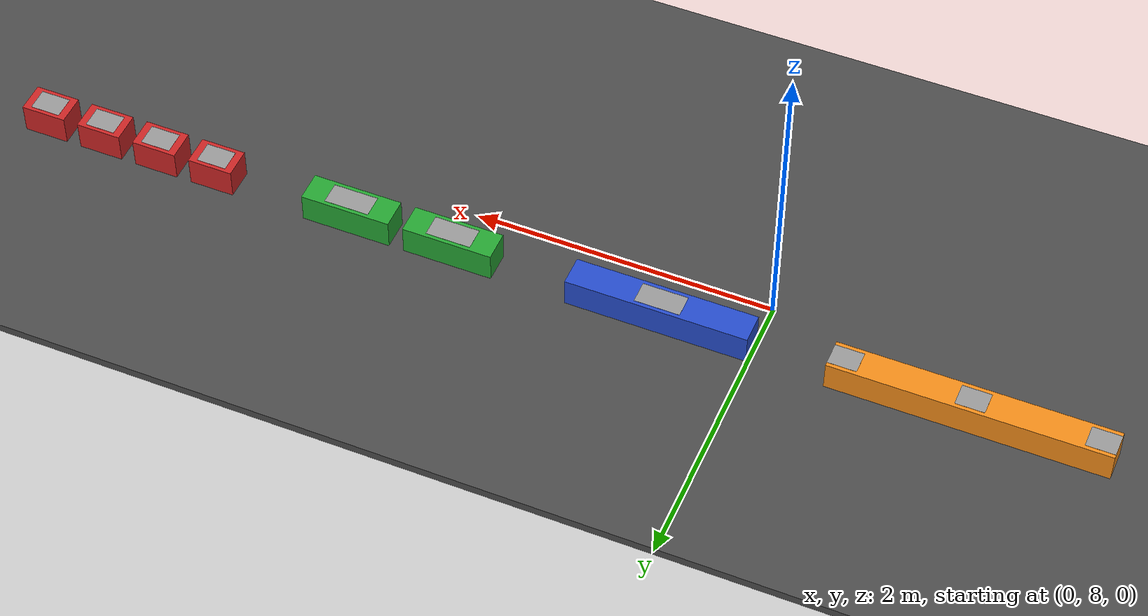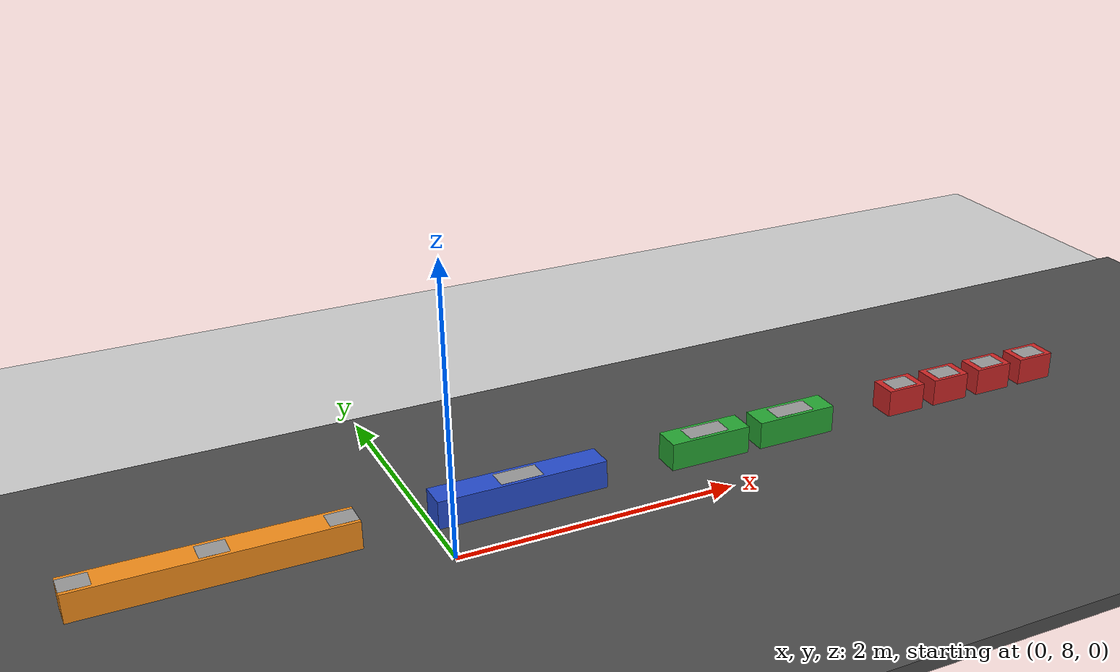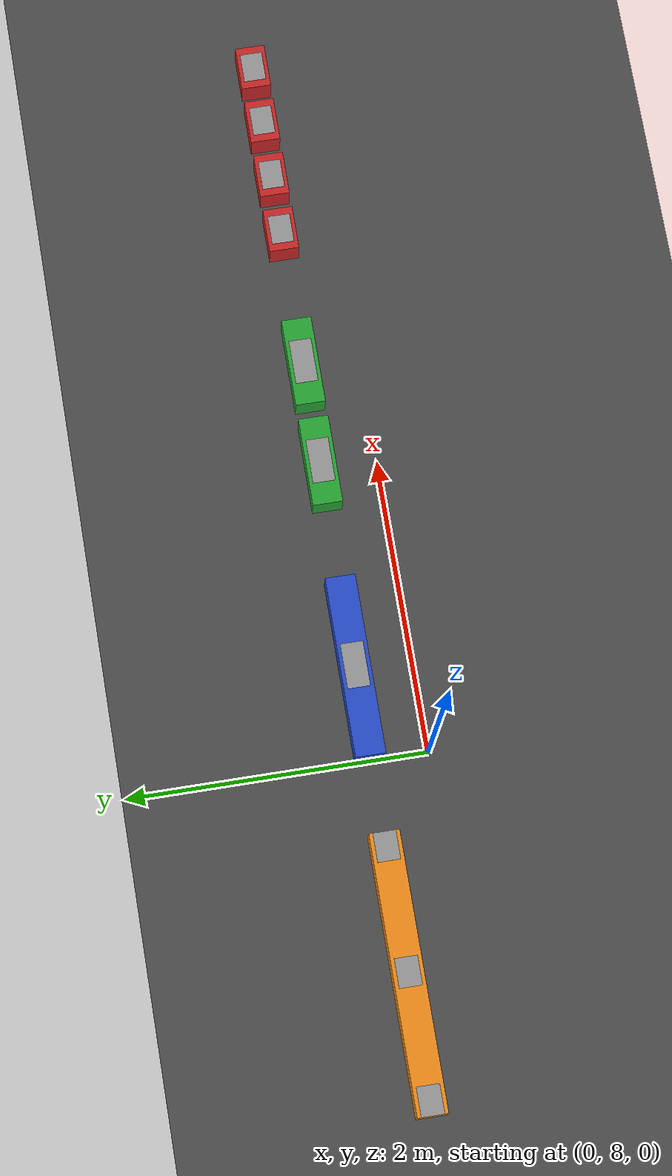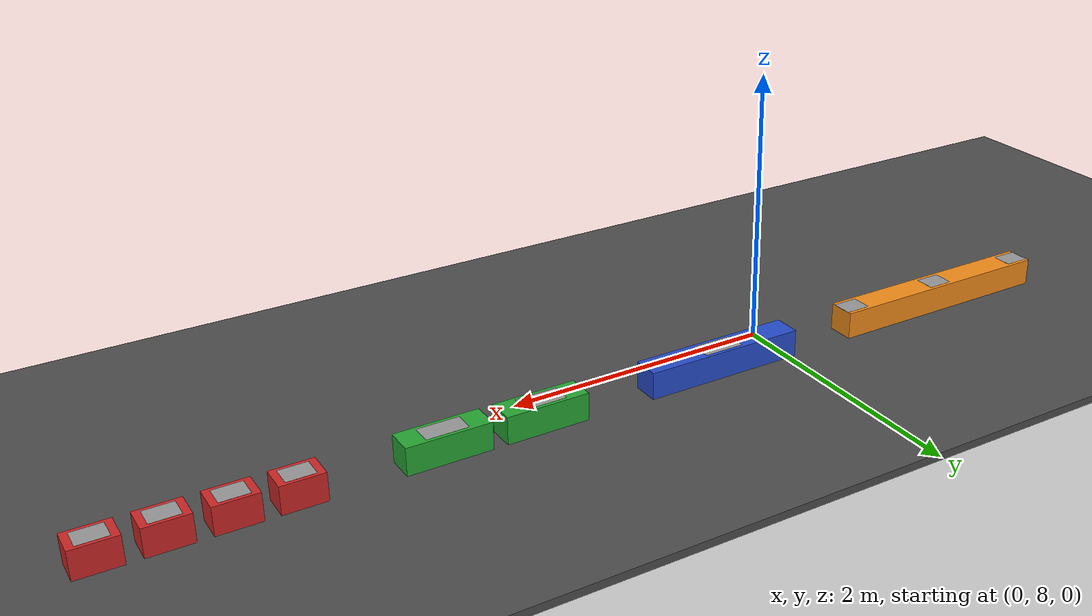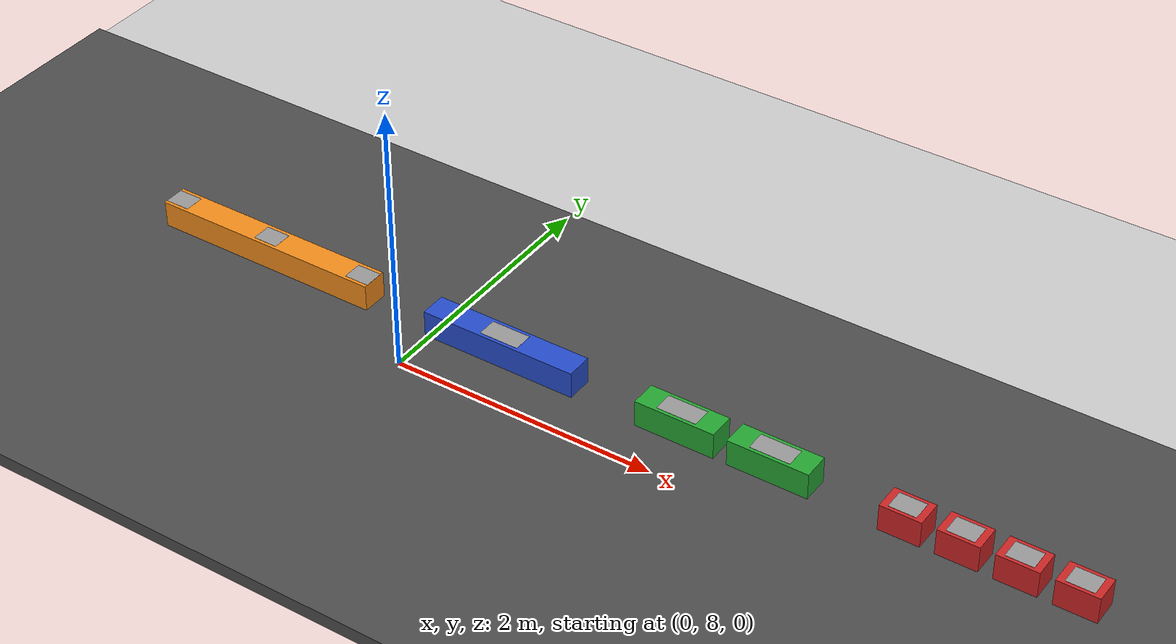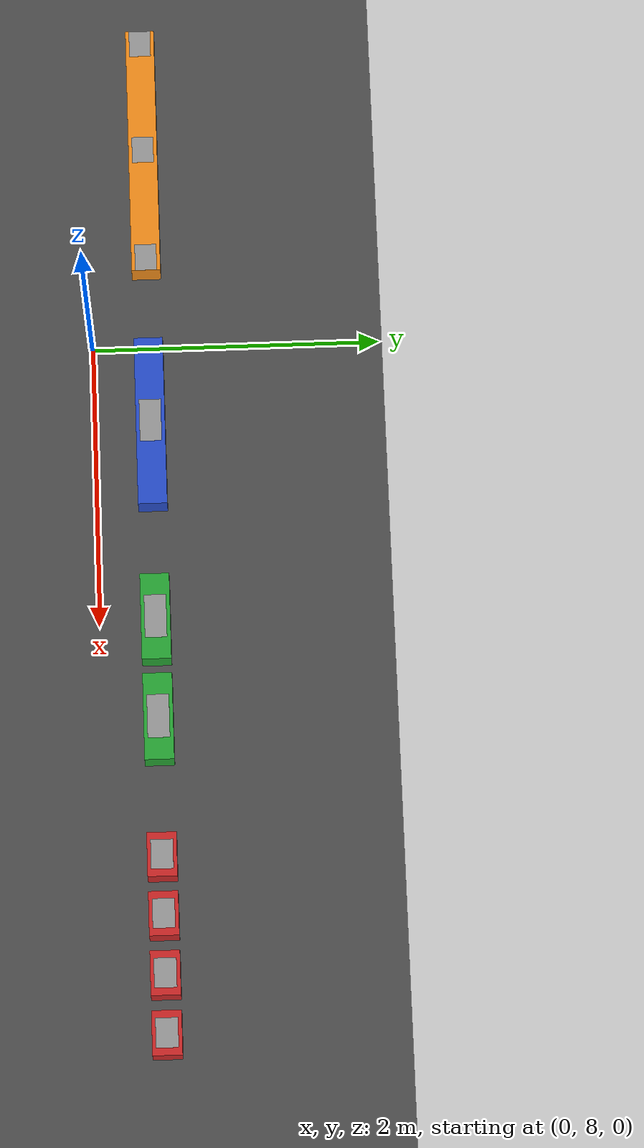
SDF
<sdf version="1.6">
 <world name="default">
  <model name="ground_plane">
   <static>1</static>
   <link name="link">
    <collision name="collision">
     <geometry><plane><normal>0 0 1</normal><size>100 100</size></plane></geometry>
     <surface>
      <contact><collide_bitmask>65535</collide_bitmask></contact>
      <friction><ode><mu>100</mu><mu2>50</mu2></ode></friction>
     </surface>
    </collision>
    <visual name="visual">
     <cast_shadows>0</cast_shadows>
     <geometry><plane><normal>0 0 1</normal><size>100 100</size></plane></geometry>
     <material>
      <script><uri>file://media/materials/scripts/gazebo.material</uri><name>Gazebo/Grey</name></script>
     </material>
    </visual>
   </link>
  </model>
  <model name="brick_red_3">
   <link name="base_link">
    <inertial>
     <mass>0.01</mass>
     <inertia><ixx>0.001</ixx><ixy>0</ixy><ixz>0</ixz><iyy>0.01</iyy><iyz>0</iyz><izz>0.01</izz></inertia>
    </inertial>
    <collision name="base_link_collision"><geometry><box><size>0.3 0.2 0.2</size></box></geometry></collision>
    <collision name="base_link_fixed_joint_lump__magnet_patch_collision_1">
     <pose>0 0 0.1 0 -0 0</pose>
     <geometry><box><size>0.1 0.025 0.0005</size></box></geometry>
    </collision>
    <visual name="base_link_visual">
     <geometry><box><size>0.3 0.2 0.2</size></box></geometry>
     <material>
      <script><name>Gazebo/Red</name><uri>file://media/materials/scripts/gazebo.material</uri></script>
     </material>
    </visual>
    <visual name="base_link_fixed_joint_lump__magnet_patch_visual_1">
     <pose>0 0 0.1 0 -0 0</pose>
     <geometry><box><size>0.2 0.15 0.001</size></box></geometry>
     <material>
      <script><name>Gazebo/Gray</name><uri>file://media/materials/scripts/gazebo.material</uri></script>
     </material>
    </visual>
   </link>
   <static>0</static>
   <plugin name="dipole_magnet" filename="libstorm_gazebo_dipole_magnet.so">
    <dipole_moment>0 0 1</dipole_moment>
    <shouldPublish>1</shouldPublish>
    <topicNs>magnet</topicNs>
    <updateRate>100</updateRate>
    <gain>1.0</gain>
    <bodyName>base_link</bodyName>
    <xyzOffset>0 0 -0.1</xyzOffset>
    <rpyOffset>0 -0 0</rpyOffset>
   </plugin>
   <pose>4.85115 8.38756 0.15 -0 -0 -0.000284</pose>
  </model>
  <model name="brick_red_4">
   <link name="base_link">
    <inertial>
     <mass>0.01</mass>
     <inertia><ixx>0.001</ixx><ixy>0</ixy><ixz>0</ixz><iyy>0.01</iyy><iyz>0</iyz><izz>0.01</izz></inertia>
    </inertial>
    <collision name="base_link_collision"><geometry><box><size>0.3 0.2 0.2</size></box></geometry></collision>
    <collision name="base_link_fixed_joint_lump__magnet_patch_collision_1">
     <pose>0 0 0.1 0 -0 0</pose>
     <geometry><box><size>0.1 0.025 0.0005</size></box></geometry>
    </collision>
    <visual name="base_link_visual">
     <geometry><box><size>0.3 0.2 0.2</size></box></geometry>
     <material>
      <script><name>Gazebo/Red</name><uri>file://media/materials/scripts/gazebo.material</uri></script>
     </material>
    </visual>
    <visual name="base_link_fixed_joint_lump__magnet_patch_visual_1">
     <pose>0 0 0.1 0 -0 0</pose>
     <geometry><box><size>0.2 0.15 0.001</size></box></geometry>
     <material>
      <script><name>Gazebo/Gray</name><uri>file://media/materials/scripts/gazebo.material</uri></script>
     </material>
    </visual>
   </link>
   <static>0</static>
   <plugin name="dipole_magnet" filename="libstorm_gazebo_dipole_magnet.so">
    <dipole_moment>0 0 1</dipole_moment>
    <shouldPublish>1</shouldPublish>
    <topicNs>magnet</topicNs>
    <updateRate>100</updateRate>
    <gain>1.0</gain>
    <bodyName>base_link</bodyName>
    <xyzOffset>0 0 -0.1</xyzOffset>
    <rpyOffset>0 -0 0</rpyOffset>
   </plugin>
   <pose>4.45114 8.38763 0.15 -0 -0 -0.000264</pose>
  </model>
  <model name="brick_red_5">
   <link name="base_link">
    <inertial>
     <mass>0.01</mass>
     <inertia><ixx>0.001</ixx><ixy>0</ixy><ixz>0</ixz><iyy>0.01</iyy><iyz>0</iyz><izz>0.01</izz></inertia>
    </inertial>
    <collision name="base_link_collision"><geometry><box><size>0.3 0.2 0.2</size></box></geometry></collision>
    <collision name="base_link_fixed_joint_lump__magnet_patch_collision_1">
     <pose>0 0 0.1 0 -0 0</pose>
     <geometry><box><size>0.1 0.025 0.0005</size></box></geometry>
    </collision>
    <visual name="base_link_visual">
     <geometry><box><size>0.3 0.2 0.2</size></box></geometry>
     <material>
      <script><name>Gazebo/Red</name><uri>file://media/materials/scripts/gazebo.material</uri></script>
     </material>
    </visual>
    <visual name="base_link_fixed_joint_lump__magnet_patch_visual_1">
     <pose>0 0 0.1 0 -0 0</pose>
     <geometry><box><size>0.2 0.15 0.001</size></box></geometry>
     <material>
      <script><name>Gazebo/Gray</name><uri>file://media/materials/scripts/gazebo.material</uri></script>
     </material>
    </visual>
   </link>
   <static>0</static>
   <plugin name="dipole_magnet" filename="libstorm_gazebo_dipole_magnet.so">
    <dipole_moment>0 0 1</dipole_moment>
    <shouldPublish>1</shouldPublish>
    <topicNs>magnet</topicNs>
    <updateRate>100</updateRate>
    <gain>1.0</gain>
    <bodyName>base_link</bodyName>
    <xyzOffset>0 0 -0.1</xyzOffset>
    <rpyOffset>0 -0 0</rpyOffset>
   </plugin>
   <pose>4.05071 8.38771 0.15 -0 -0 -0.000236</pose>
  </model>
  <model name="brick_red_6">
   <link name="base_link">
    <inertial>
     <mass>0.01</mass>
     <inertia><ixx>0.001</ixx><ixy>0</ixy><ixz>0</ixz><iyy>0.01</iyy><iyz>0</iyz><izz>0.01</izz></inertia>
    </inertial>
    <collision name="base_link_collision"><geometry><box><size>0.3 0.2 0.2</size></box></geometry></collision>
    <collision name="base_link_fixed_joint_lump__magnet_patch_collision_1">
     <pose>0 0 0.1 0 -0 0</pose>
     <geometry><box><size>0.1 0.025 0.0005</size></box></geometry>
    </collision>
    <visual name="base_link_visual">
     <geometry><box><size>0.3 0.2 0.2</size></box></geometry>
     <material>
      <script><name>Gazebo/Red</name><uri>file://media/materials/scripts/gazebo.material</uri></script>
     </material>
    </visual>
    <visual name="base_link_fixed_joint_lump__magnet_patch_visual_1">
     <pose>0 0 0.1 0 -0 0</pose>
     <geometry><box><size>0.2 0.15 0.001</size></box></geometry>
     <material>
      <script><name>Gazebo/Gray</name><uri>file://media/materials/scripts/gazebo.material</uri></script>
     </material>
    </visual>
   </link>
   <static>0</static>
   <plugin name="dipole_magnet" filename="libstorm_gazebo_dipole_magnet.so">
    <dipole_moment>0 0 1</dipole_moment>
    <shouldPublish>1</shouldPublish>
    <topicNs>magnet</topicNs>
    <updateRate>100</updateRate>
    <gain>1.0</gain>
    <bodyName>base_link</bodyName>
    <xyzOffset>0 0 -0.1</xyzOffset>
    <rpyOffset>0 -0 0</rpyOffset>
   </plugin>
   <pose>3.65 8.38738 0.15 -0 -0 -0.000217</pose>
  </model>
  <model name="brick_green_1">
   <link name="base_link">
    <inertial>
     <mass>0.01</mass>
     <inertia><ixx>0.001</ixx><ixy>0</ixy><ixz>0</ixz><iyy>0.01</iyy><iyz>0</iyz><izz>0.01</izz></inertia>
    </inertial>
    <collision name="base_link_collision"><geometry><box><size>0.6 0.2 0.2</size></box></geometry></collision>
    <collision name="base_link_fixed_joint_lump__magnet_patch_collision_1">
     <pose>0 0 0.1 0 -0 0</pose>
     <geometry><box><size>0.1 0.025 0.0005</size></box></geometry>
    </collision>
    <visual name="base_link_visual">
     <geometry><box><size>0.6 0.2 0.2</size></box></geometry>
     <material>
      <script><name>Gazebo/Green</name><uri>file://media/materials/scripts/gazebo.material</uri></script>
     </material>
    </visual>
    <visual name="base_link_fixed_joint_lump__magnet_patch_visual_1">
     <pose>0 0 0.1 0 -0 0</pose>
     <geometry><box><size>0.3 0.15 0.001</size></box></geometry>
     <material>
      <script><name>Gazebo/Gray</name><uri>file://media/materials/scripts/gazebo.material</uri></script>
     </material>
    </visual>
   </link>
   <static>0</static>
   <plugin name="dipole_magnet" filename="libstorm_gazebo_dipole_magnet.so">
    <dipole_moment>0 0 1</dipole_moment>
    <shouldPublish>1</shouldPublish>
    <topicNs>magnet</topicNs>
    <updateRate>100</updateRate>
    <gain>1.0</gain>
    <bodyName>base_link</bodyName>
    <xyzOffset>0 0 -0.1</xyzOffset>
    <rpyOffset>0 -0 0</rpyOffset>
   </plugin>
   <pose>1.99999 8.38796 0.15 -5e-06 -0 -1.1e-05</pose>
  </model>
  <model name="brick_green_2">
   <link name="base_link">
    <inertial>
     <mass>0.01</mass>
     <inertia><ixx>0.001</ixx><ixy>0</ixy><ixz>0</ixz><iyy>0.01</iyy><iyz>0</iyz><izz>0.01</izz></inertia>
    </inertial>
    <collision name="base_link_collision"><geometry><box><size>0.6 0.2 0.2</size></box></geometry></collision>
    <collision name="base_link_fixed_joint_lump__magnet_patch_collision_1">
     <pose>0 0 0.1 0 -0 0</pose>
     <geometry><box><size>0.1 0.025 0.0005</size></box></geometry>
    </collision>
    <visual name="base_link_visual">
     <geometry><box><size>0.6 0.2 0.2</size></box></geometry>
     <material>
      <script><name>Gazebo/Green</name><uri>file://media/materials/scripts/gazebo.material</uri></script>
     </material>
    </visual>
    <visual name="base_link_fixed_joint_lump__magnet_patch_visual_1">
     <pose>0 0 0.1 0 -0 0</pose>
     <geometry><box><size>0.3 0.15 0.001</size></box></geometry>
     <material>
      <script><name>Gazebo/Gray</name><uri>file://media/materials/scripts/gazebo.material</uri></script>
     </material>
    </visual>
   </link>
   <static>0</static>
   <plugin name="dipole_magnet" filename="libstorm_gazebo_dipole_magnet.so">
    <dipole_moment>0 0 1</dipole_moment>
    <shouldPublish>1</shouldPublish>
    <topicNs>magnet</topicNs>
    <updateRate>100</updateRate>
    <gain>1.0</gain>
    <bodyName>base_link</bodyName>
    <xyzOffset>0 0 -0.1</xyzOffset>
    <rpyOffset>0 -0 0</rpyOffset>
   </plugin>
   <pose>2.69941 8.38819 0.15 -4e-06 -0 2e-05</pose>
  </model>
  <model name="brick_blue">
   <link name="base_link">
    <inertial>
     <mass>0.01</mass>
     <inertia><ixx>0.001</ixx><ixy>0</ixy><ixz>0</ixz><iyy>0.01</iyy><iyz>0</iyz><izz>0.01</izz></inertia>
    </inertial>
    <collision name="base_link_collision"><geometry><box><size>1.2 0.2 0.2</size></box></geometry></collision>
    <collision name="base_link_fixed_joint_lump__magnet_patch_collision_1">
     <pose>0 0 0.1 0 -0 0</pose>
     <geometry><box><size>0.1 0.025 0.0005</size></box></geometry>
    </collision>
    <visual name="base_link_visual">
     <geometry><box><size>1.2 0.2 0.2</size></box></geometry>
     <material>
      <script><name>Gazebo/Blue</name><uri>file://media/materials/scripts/gazebo.material</uri></script>
     </material>
    </visual>
    <visual name="base_link_fixed_joint_lump__magnet_patch_visual_1">
     <pose>0 0 0.1 0 -0 0</pose>
     <geometry><box><size>0.3 0.15 0.001</size></box></geometry>
     <material>
      <script><name>Gazebo/Gray</name><uri>file://media/materials/scripts/gazebo.material</uri></script>
     </material>
    </visual>
   </link>
   <static>0</static>
   <plugin name="dipole_magnet" filename="libstorm_gazebo_dipole_magnet.so">
    <dipole_moment>0 0 1</dipole_moment>
    <shouldPublish>1</shouldPublish>
    <topicNs>magnet</topicNs>
    <updateRate>100</updateRate>
    <gain>1.0</gain>
    <bodyName>base_link</bodyName>
    <xyzOffset>0 0 -0.1</xyzOffset>
    <rpyOffset>0 -0 0</rpyOffset>
   </plugin>
   <pose>0.600023 8.39038 0.15 0 -0 0</pose>
  </model>
  <model name="brick_orange">
   <link name="base_link">
    <inertial>
     <mass>0.01</mass>
     <inertia><ixx>0.001</ixx><ixy>0</ixy><ixz>0</ixz><iyy>0.01</iyy><iyz>0</iyz><izz>0.01</izz></inertia>
    </inertial>
    <collision name="base_link_collision"><geometry><box><size>1.8 0.2 0.2</size></box></geometry></collision>
    <collision name="base_link_fixed_joint_lump__magnet_patch_collision_0">
     <pose>-0.805 0 0.1 0 -0 0</pose>
     <geometry><box><size>0.2 0.15 0.0005</size></box></geometry>
    </collision>
    <collision name="base_link_fixed_joint_lump__magnet_patch_collision_1">
     <pose>0 0 0.1 0 -0 0</pose>
     <geometry><box><size>0.15 0.15 0.0005</size></box></geometry>
    </collision>
    <collision name="base_link_fixed_joint_lump__magnet_patch_collision_2">
     <pose>0.805 0 0.1 0 -0 0</pose>
     <geometry><box><size>0.15 0.15 0.0005</size></box></geometry>
    </collision>
    <visual name="base_link_visual">
     <geometry><box><size>1.8 0.2 0.2</size></box></geometry>
     <material>
      <script><name>Gazebo/Orange</name><uri>file://media/materials/scripts/gazebo.material</uri></script>
     </material>
    </visual>
    <visual name="base_link_fixed_joint_lump__magnet_patch_visual_0">
     <pose>-0.805 0 0.1 0 -0 0</pose>
     <geometry><box><size>0.19 0.15 0.001</size></box></geometry>
     <material>
      <script><name>Gazebo/Gray</name><uri>file://media/materials/scripts/gazebo.material</uri></script>
     </material>
    </visual>
    <visual name="base_link_fixed_joint_lump__magnet_patch_visual_1">
     <pose>0 0 0.1 0 -0 0</pose>
     <geometry><box><size>0.19 0.15 0.001</size></box></geometry>
     <material>
      <script><name>Gazebo/Gray</name><uri>file://media/materials/scripts/gazebo.material</uri></script>
     </material>
    </visual>
    <visual name="base_link_fixed_joint_lump__magnet_patch_visual_2">
     <pose>0.805 0 0.1 0 -0 0</pose>
     <geometry><box><size>0.19 0.15 0.001</size></box></geometry>
     <material>
      <script><name>Gazebo/Gray</name><uri>file://media/materials/scripts/gazebo.material</uri></script>
     </material>
    </visual>
   </link>
   <static>0</static>
   <plugin name="dipole_magnet" filename="libstorm_gazebo_dipole_magnet.so">
    <dipole_moment>0 0 1</dipole_moment>
    <shouldPublish>1</shouldPublish>
    <topicNs>magnet</topicNs>
    <updateRate>100</updateRate>
    <gain>1.0</gain>
    <bodyName>base_link</bodyName>
    <xyzOffset>0 0 -0.1</xyzOffset>
    <rpyOffset>0 -0 0</rpyOffset>
   </plugin>
   <plugin name="dipole_magnet" filename="libstorm_gazebo_dipole_magnet.so">
    <dipole_moment>0 0 1</dipole_moment>
    <shouldPublish>1</shouldPublish>
    <topicNs>magnet</topicNs>
    <updateRate>100</updateRate>
    <gain>1.0</gain>
    <bodyName>base_link</bodyName>
    <xyzOffset>-0.805 0 -0.1</xyzOffset>
    <rpyOffset>0 -0 0</rpyOffset>
   </plugin>
   <plugin name="dipole_magnet" filename="libstorm_gazebo_dipole_magnet.so">
    <dipole_moment>0 0 1</dipole_moment>
    <shouldPublish>1</shouldPublish>
    <topicNs>magnet</topicNs>
    <updateRate>100</updateRate>
    <gain>1.0</gain>
    <bodyName>base_link</bodyName>
    <xyzOffset>0.805 0 -0.1</xyzOffset>
    <rpyOffset>0 -0 0</rpyOffset>
   </plugin>
   <pose>-1.40003 8.38891 0.15 0 -0 0</pose>
  </model>
  <model name="asphalt_plane">
   <static>1</static>
   <link name="link">
    <collision name="collision"><geometry><box><size>20 20 0.1</size></box></geometry></collision>
    <visual name="visual">
     <cast_shadows>0</cast_shadows>
     <geometry><box><size>20 20 0.1</size></box></geometry>
     <material>
      <script>
       <uri>model://asphalt_plane/materials/scripts</uri>
       <uri>model://asphalt_plane/materials/textures</uri>
       <name>vrc/asphalt</name>
      </script>
     </material>
    </visual>
   </link>
   <pose>0.00701 0.016741 0 0 -0 0</pose>
  </model>
 </world>
</sdf>
